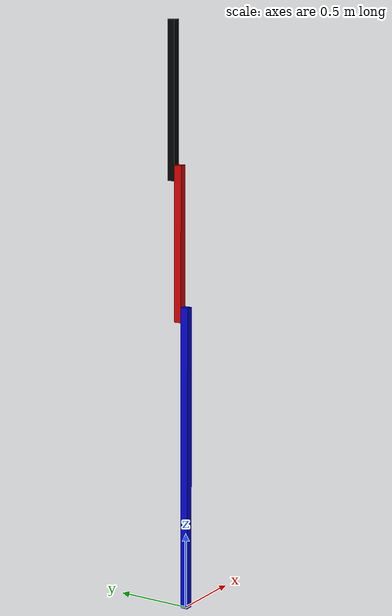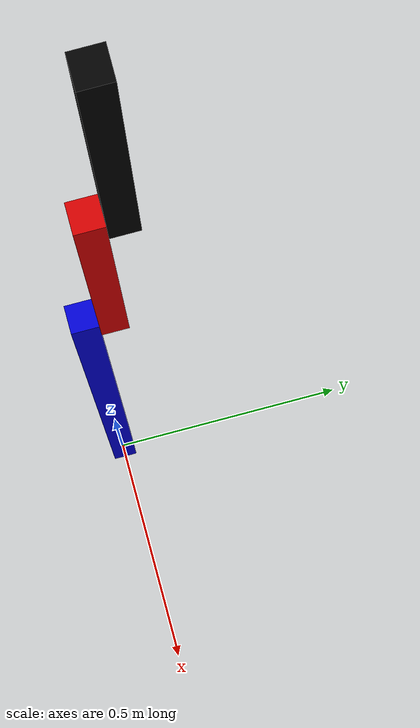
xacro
<?xml version="1.0" encoding="UTF-8"?>
<robot xmlns:xacro="http://wiki.ros.org/xacro" name="rrbot">

  <!-- Use this if parameters are set from the launch file, otherwise delete -->
  <xacro:arg name="prefix" default="" />

  <xacro:include filename="$(find rrbot_description)/urdf/rrbot/rrbot_macro.xacro"/>
  <xacro:include filename="$(find rrbot_description)/urdf/common/inertials.xacro" />
  <xacro:include filename="$(find rrbot_description)/urdf/common/materials.xacro" />

  <!-- create link fixed to the "world" -->
  <link name="world" />

  <!-- Load robot's macro with parameters -->
  <!-- set prefix if multiple robots are used -->
  <xacro:rrbot prefix="$(arg prefix)" parent="world" >
    <origin xyz="0 0 0" rpy="0 0 0" />          <!-- position robot in the world -->
  </xacro:rrbot>

</robot>

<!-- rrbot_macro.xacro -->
<robot xmlns:xacro="http://wiki.ros.org/xacro">

  <xacro:macro name="rrbot" params="parent prefix *origin">

    <!-- Constants for robot dimensions -->
    <xacro:property name="mass" value="10" /> <!-- arbitrary value for mass -->
    <xacro:property name="width" value="0.05" /> <!-- Square dimensions (widthxwidth) of beams -->
    <xacro:property name="height1" value="2" /> <!-- Link 1 -->
    <xacro:property name="height2" value="1" /> <!-- Link 2 -->
    <xacro:property name="height3" value="1" /> <!-- Link 3 -->
    <xacro:property name="axel_offset" value="0.05" /> <!-- Space btw top of beam and the each joint -->

    <joint name="${prefix}base_joint" type="fixed">
      <xacro:insert_block name="origin" />
      <parent link="${parent}" />
      <child link="${prefix}base_link" />
    </joint>

    <!-- Base Link -->
    <link name="${prefix}base_link">
      <collision>
        <origin xyz="0 0 ${height1/2}" rpy="0 0 0" />
        <geometry>
          <box size="${width} ${width} ${height1}" />
        </geometry>
      </collision>

      <visual>
        <origin xyz="0 0 ${height1/2}" rpy="0 0 0" />
        <geometry>
          <box size="${width} ${width} ${height1}" />
        </geometry>
        <material name="blue" />
      </visual>

      <xacro:box_inertial x="${width}" y="${width}" z="${height1}" mass="${mass}">
        <origin xyz="0 0 ${height1/2}" rpy="0 0 0" />
      </xacro:box_inertial>
    </link>

    <joint name="${prefix}joint1" type="continuous">
      <parent link="${prefix}base_link" />
      <child link="${prefix}link1" />
      <origin xyz="0 ${width} ${height1 - axel_offset}" rpy="0 0 0" />
      <axis xyz="0 1 0" />
      <limit effort="1000" velocity="10.0" />
    </joint>

    <!-- Middle Link -->
    <link name="${prefix}link1">
      <collision>
        <origin xyz="0 0 ${height2/2 - axel_offset}" rpy="0 0 0" />
        <geometry>
          <box size="${width} ${width} ${height2}" />
        </geometry>
      </collision>

      <visual>
        <origin xyz="0 0 ${height2/2 - axel_offset}" rpy="0 0 0" />
        <geometry>
          <box size="${width} ${width} ${height2}" />
        </geometry>
        <material name="red" />
      </visual>

      <xacro:box_inertial x="${width}" y="${width}" z="${height2}" mass="${mass}">
        <origin xyz="0 0 ${height2/2 - axel_offset}" rpy="0 0 0" />
      </xacro:box_inertial>
    </link>

    <joint name="${prefix}joint2" type="continuous">
      <parent link="${prefix}link1" />
      <child link="${prefix}link2" />
      <origin xyz="0 ${width} ${height2 - axel_offset*2}" rpy="0 0 0" />
      <axis xyz="0 1 0" />
      <limit effort="1000" velocity="10.0" />
    </joint>

    <!-- Top Link -->
    <link name="${prefix}link2">
      <collision>
        <origin xyz="0 0 ${height3/2 - axel_offset}" rpy="0 0 0" />
        <geometry>
          <box size="${width} ${width} ${height3}" />
        </geometry>
      </collision>

      <visual>
        <origin xyz="0 0 ${height3/2 - axel_offset}" rpy="0 0 0" />
        <geometry>
          <box size="${width} ${width} ${height3}" />
        </geometry>
        <material name="black" />
      </visual>

      <xacro:box_inertial x="${width}" y="${width}" z="${height3}" mass="${mass}">
        <origin xyz="0 0 ${height3/2 - axel_offset}" rpy="0 0 0" />
      </xacro:box_inertial>
    </link>

    <joint name="${prefix}tool_joint" type="fixed">
      <origin xyz="0 0 ${height3-axel_offset}" rpy="0 0 0" />
      <parent link="${prefix}link2" />
      <child link="${prefix}tool0" />
    </joint>

    <!-- Tool Link -->
    <link name="${prefix}tool0"/>

  </xacro:macro>
</robot>

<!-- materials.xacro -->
<robot>
  <material name="black">
    <color rgba="0.0 0.0 0.0 1.0"/>
  </material>

  <material name="blue">
    <color rgba="0.0 0.0 0.8 1.0"/>
  </material>

  <material name="green">
    <color rgba="0.0 1.0 0.0 1.0"/>
  </material>

  <material name="dark_grey">
    <color rgba="0.2 0.2 0.2 1.0"/>
  </material>

  <material name="grey">
    <color rgba="0.5 0.5 0.5 1.0"/>
  </material>

  <material name="light_grey">
    <color rgba="0.8 0.8 0.8 1.0"/>
  </material>

  <material name="orange">
    <color rgba="${255/255} ${108/255} ${10/255} 1.0"/>
  </material>

<material name="brown">
    <color rgba="0.54 0.27 0.07 1.0"/>
</material>

  <material name="red">
    <color rgba="0.8 0.0 0.0 1.0"/>
  </material>

  <material name="white">
    <color rgba="1.0 1.0 1.0 1.0"/>
  </material>

</robot>
